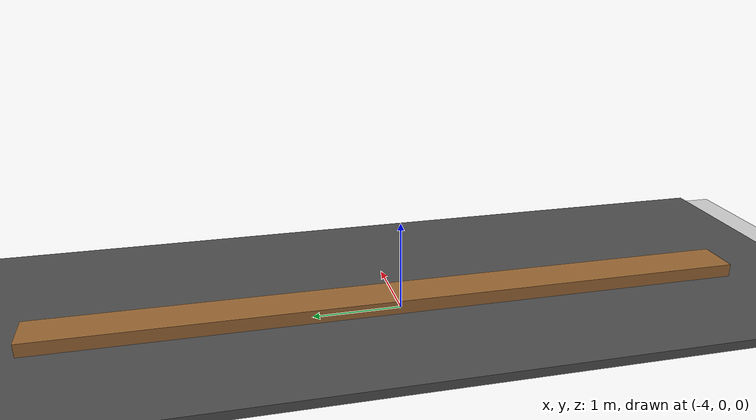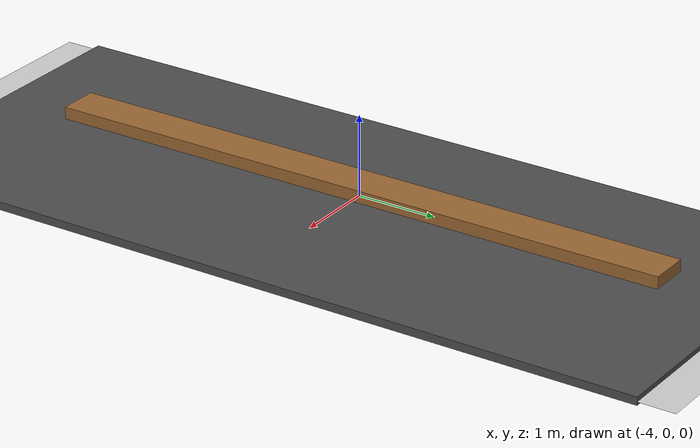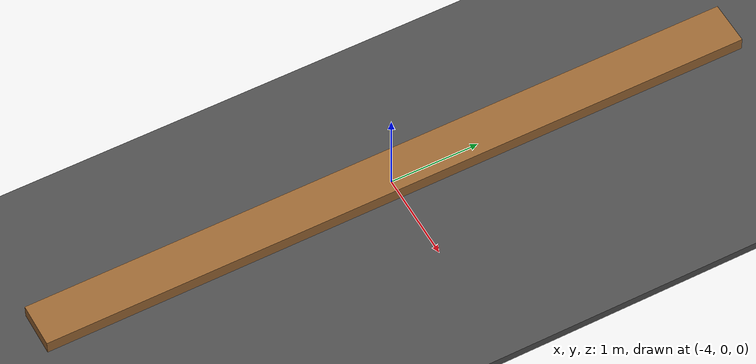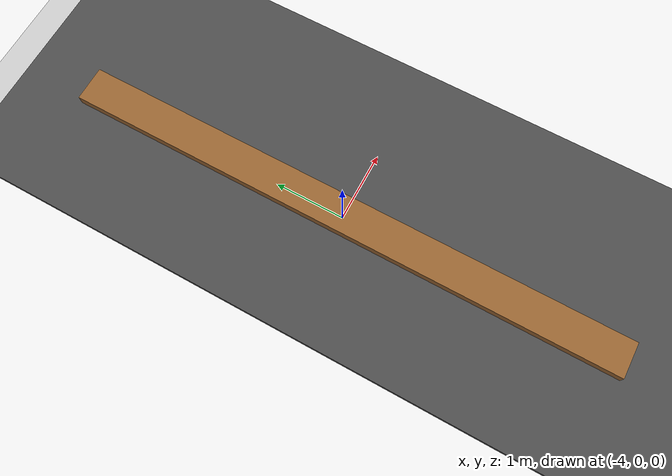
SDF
<?xml version="1.0" ?>
<sdf version="1.6">
  <world name="greenhouse_world">
    <!-- Physics -->
    <physics type="ode">
      <max_step_size>0.001</max_step_size>
      <real_time_factor>1</real_time_factor>
      <real_time_update_rate>1000</real_time_update_rate>
    </physics>

    <!-- Light -->
    <include>
      <uri>model://sun</uri>
    </include>

    <!-- Ground Plane -->
    <include>
      <uri>model://ground_plane</uri>
    </include>

    <!-- Greenhouse Structure -->
    <model name="greenhouse">
      <static>true</static>
      <pose>0 0 0 0 0 0</pose>

      <!-- Floor -->
      <link name="floor">
        <collision name="floor_collision">
          <geometry>
            <box>
              <size>20.0 10.0 0.1</size>
            </box>
          </geometry>
        </collision>
        <visual name="floor_visual">
          <geometry>
            <box>
              <size>20.0 10.0 0.1</size>
            </box>
          </geometry>
          <material>
            <ambient>0.3 0.3 0.3 1</ambient>
            <diffuse>0.3 0.3 0.3 1</diffuse>
          </material>
        </visual>
      </link>

      <!-- Planting Rows -->
      <link name="planting_rows">
        <collision name="row1">
          <pose>-4 0 0.1 0 0 0</pose>
          <geometry>
            <box>
              <size>0.5 8.0 0.2</size>
            </box>
          </geometry>
        </collision>
        <visual name="row1_visual">
          <pose>-4 0 0.1 0 0 0</pose>
          <geometry>
            <box>
              <size>0.5 8.0 0.2</size>
            </box>
          </geometry>
          <material>
            <ambient>0.6 0.4 0.2 1</ambient>
            <diffuse>0.6 0.4 0.2 1</diffuse>
          </material>
        </visual>
      </link>

      <!-- Lighting -->
      <light name="grow_light_1" type="point">
        <pose>0 0 3 0 0 0</pose>
        <diffuse>0.8 0.8 0.5 1</diffuse>
        <specular>0.2 0.2 0.2 1</specular>
        <attenuation>
          <range>20</range>
          <constant>0.5</constant>
          <linear>0.01</linear>
          <quadratic>0.001</quadratic>
        </attenuation>
        <cast_shadows>true</cast_shadows>
      </light>
    </model>

    <!-- Environment Properties -->
    <scene>
      <ambient>0.8 0.8 0.8 1</ambient>
      <background>0.7 0.7 0.7 1</background>
      <shadows>true</shadows>
    </scene>

    <!-- Wind -->
    <wind>
      <linear_velocity>0.5 0 0</linear_velocity>
    </wind>

  </world>
</sdf>
